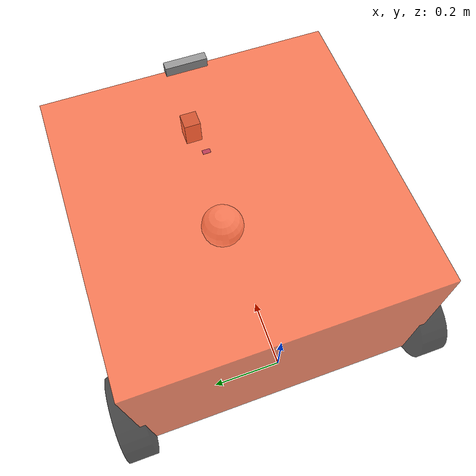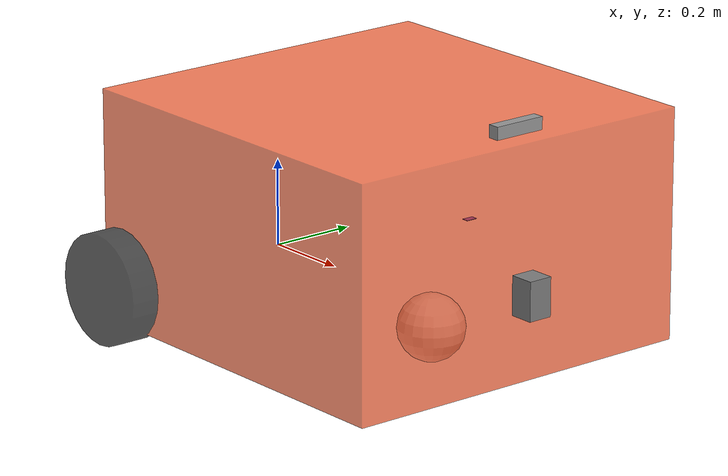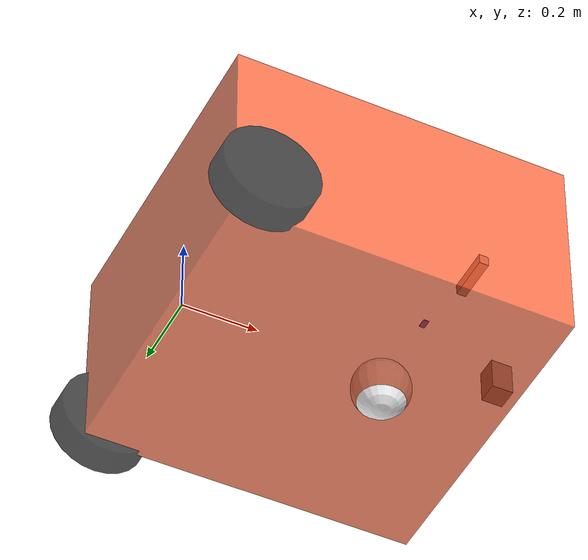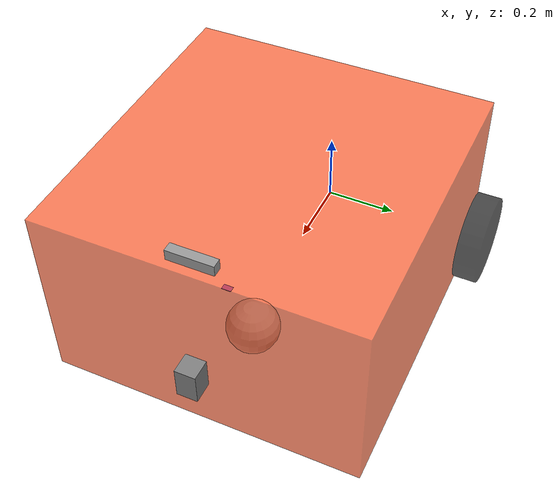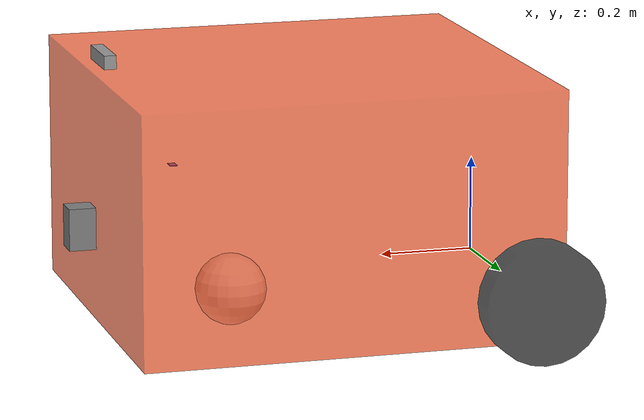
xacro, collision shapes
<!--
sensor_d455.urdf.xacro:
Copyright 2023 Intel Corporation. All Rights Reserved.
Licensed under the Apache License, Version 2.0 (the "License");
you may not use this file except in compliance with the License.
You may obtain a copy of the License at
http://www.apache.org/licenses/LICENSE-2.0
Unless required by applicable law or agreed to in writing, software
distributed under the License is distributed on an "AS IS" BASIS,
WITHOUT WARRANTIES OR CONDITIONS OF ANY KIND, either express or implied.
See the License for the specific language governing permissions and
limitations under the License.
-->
<?xml version="1.0"?>
<robot xmlns:xacro="http://www.ros.org/wiki/xacro" name="sweeper">

  <xacro:include filename="$(find sweepy_bringup)/urdf/robot_core.xacro"/>
  <xacro:include filename="$(find sweepy_bringup)/urdf/gazebo_control.xacro"/>
  <xacro:include filename="$(find sweepy_bringup)/urdf/sensor_sick.xacro"/>
  <xacro:include filename="$(find sweepy_bringup)/urdf/sensor_imu.xacro"/>
  <xacro:include filename="$(find sweepy_bringup)/urdf/sensor_d455.urdf.xacro"/>
  <xacro:include filename="$(find sweepy_bringup)/urdf/sensor_d455.gazebo.xacro"/>
  <xacro:include filename="$(find sweepy_bringup)/urdf/gazebo_sensors.xacro"/>

  <!-- Mount the D455 on base_link -->
  <xacro:sensor_d455 parent="base_link" name="d455" use_nominal_extrinsics="true">
    <origin xyz="0.8 0 0.45" rpy="0 0 0"/>
  </xacro:sensor_d455>

  <!-- Add the Gazebo simulation plugin -->
  <xacro:gazebo_d455
    camera_name="d455_"
    reference_link="d455_link"
    topics_ns="d455"
    depth_optical_frame="d455_depth_optical_frame"
    color_optical_frame="d455_color_optical_frame"
    infrared1_optical_frame="d455_infra1_optical_frame"
    infrared2_optical_frame="d455_infra2_optical_frame"
    publish_pointcloud="true"
  />

</robot>

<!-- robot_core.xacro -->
<robot name="sweeper" xmlns:xacro="http://ros.org/wiki/xacro">

  <xacro:include filename="intertial_macros.xacro"/>

  <!-- Define robot constants -->
  <xacro:property name="chassis_width" value="0.8636"/>
  <xacro:property name="chassis_length" value="0.889"/>
  <xacro:property name="chassis_height" value="0.527"/>
  <xacro:property name="chassis_mass" value="5"/>

  <xacro:property name="wheel_radius" value="0.127"/>
  <xacro:property name="wheel_thickness" value="0.0823"/>
  <xacro:property name="wheel_offset_y" value=".457"/>
  <xacro:property name="wheel_offset_z" value="0.0"/> <!--not used-->
  <xacro:property name="wheel_offset_x" value="0.0"/> <!--not used-->
  <xacro:property name="wheel_mass" value=".5"/>

  <xacro:property name="caster_wheel_mass" value=".2"/>
  <xacro:property name="caster_wheel_radius" value="0.0762"/>
  <xacro:property name="caster_wheel_offset_z" value="0.0445"/> <!-- (1.75") lowest point of chassis to center of caster wheel-->
  <xacro:property name="caster_wheel_offset_x" value=".597"/>

  <!-- chasis bottom point is the back bottom metal frame near the motors -->
  <!-- mass inaccurate, only matters for simulation -->

  <!-- colors for RViz visualization-->
  <material name="white">
    <color rgba="1 1 1 1" />
  </material>
  <material name="orange">
    <color rgba="1 .3 .1 0.7" />
  </material>
  <material name="blue">
    <color rgba=".2 .2 1 1" />
  </material>
  <material name="black">
    <color rgba="0 0 0 0.7" />
  </material>
  <material name="red">
    <color rgba="1 0 0 1" />
  </material>

  <!-- base link-->
  <link name="base_link"/>

  <link name="base_footprint"/>

  <!-- base_footprint link-->
  <joint name="base_footprint_joint" type="fixed">
    <parent link="base_link"/>
    <child link="base_footprint"/>
    <origin xyz="0 0 0" rpy="0 0 0"/>
  </joint>

  <!-- chassis link -->
  <joint name="chassis_joint" type="fixed">
    <parent link="base_link"/>
    <child link="chassis"/>
    <origin xyz="-.0635 0 -.0953"/>
  </joint>

  <link name="chassis">
    <visual>
      <origin xyz="${chassis_length/2} 0 ${chassis_height/2}"/>
      <geometry>
        <box size="${chassis_length} ${chassis_width} ${chassis_height}"/>
      </geometry>
      <material name="orange"/>
    </visual>
    <collision>
      <origin xyz="${chassis_length/2} 0 ${chassis_height/2}"/>
      <geometry>
        <box size="${chassis_length} ${chassis_width} ${chassis_height}"/>
      </geometry>
    </collision>
    <xacro:inertial_box mass="${chassis_mass}" x="${chassis_length}" y="${chassis_width}" z="${chassis_height}">
      <origin xyz="${chassis_length/2} 0 ${chassis_height/2}" rpy="0 0 0"/>
    </xacro:inertial_box>
  </link>

  <gazebo reference="chassis">
    <material>Gazebo/Orange</material>
  </gazebo>

  <!-- LEFT WHEEL LINK -->
  <joint name="left_wheel_joint" type="continuous"> <!-- change back to continuous-->
      <parent link="base_link"/>
      <child link="left_wheel"/>
      <origin xyz="0 ${wheel_offset_y} 0" rpy="-${pi/2} 0 0" />
      <axis xyz="0 0 1"/>
  </joint>

  <link name="left_wheel">
      <visual>
          <geometry>
              <cylinder radius="${wheel_radius}" length="${wheel_thickness}"/>
          </geometry>
          <material name="black"/>
      </visual>
      <collision>
          <geometry>
              <cylinder radius="${wheel_radius}" length="${wheel_thickness}"/>
          </geometry>
      </collision>
      <xacro:inertial_cylinder mass="${wheel_mass}" length="${wheel_thickness}" radius="${wheel_radius}">
          <origin xyz="0 0 0" rpy="0 0 0"/>
      </xacro:inertial_cylinder>
  </link>

  <gazebo reference="left_wheel">
      <material>Gazebo/Black</material>
  </gazebo>

  <!-- RIGHT WHEEL LINK -->
  <joint name="right_wheel_joint" type="continuous"> <!-- change back to continuous-->
      <parent link="base_link"/>
      <child link="right_wheel"/>
      <origin xyz="0 ${-wheel_offset_y} 0" rpy="${pi/2} 0 0" />
      <axis xyz="0 0 -1"/>
  </joint>

  <link name="right_wheel">
      <visual>
          <geometry>
              <cylinder radius="${wheel_radius}" length="${wheel_thickness}"/>
          </geometry>
          <material name="black"/>
      </visual>
      <collision>
          <geometry>
              <cylinder radius="${wheel_radius}" length="${wheel_thickness}"/>
          </geometry>
      </collision>
      <xacro:inertial_cylinder mass="${wheel_mass}" length="${wheel_thickness}" radius="${wheel_radius}">
          <origin xyz="0 0 0" rpy="0 0 0"/>
      </xacro:inertial_cylinder>
  </link>

  <gazebo reference="right_wheel">
      <material>Gazebo/Black</material>
  </gazebo>

  <!-- CASTER WHEEL LINK -->
  <joint name="caster_wheel_joint" type="fixed">
      <parent link="chassis"/>
      <child link="caster_wheel"/>
      <origin xyz="${caster_wheel_offset_x} 0 ${caster_wheel_offset_z}"/>
  </joint>

  <link name="caster_wheel">
      <visual>
          <geometry>
              <sphere radius="${caster_wheel_radius}"/>
          </geometry>
          <material name="white"/>
      </visual>
      <collision>
          <geometry>
              <sphere radius="${caster_wheel_radius}"/>
          </geometry>
      </collision>
      <xacro:inertial_sphere mass="${caster_wheel_mass}" radius="${caster_wheel_radius}">
          <origin xyz="0 0 0" rpy="0 0 0"/>
      </xacro:inertial_sphere>
  </link>

  <gazebo reference="caster_wheel">
      <material>Gazebo/White</material>
      <mu1 value="0.001"/>
      <mu2 value="0.001"/>
  </gazebo>

</robot>

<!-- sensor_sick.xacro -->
<robot name="sweeper" xmlns:xacro="http://ros.org/wiki/xacro">

    <material name="grey">
        <color rgba="0.5 0.5 0.5 1" />
    </material>

    <link name="sick_link">
        <visual>
            <origin xyz="0 0 0" rpy="0 0 0"/>
            <geometry>
                <mesh filename="file://$(find sweepy_bringup)/meshes/sick781.stl" />
            </geometry>
            <material name="grey"/>
        </visual>

        <collision>
            <origin xyz="-0.00 0 -0.02" rpy="0 0 0"/>
            <geometry>
                <box size="0.057 0.057 0.089"/>
            </geometry>
        </collision>

        <inertial>
            <origin xyz="0 0 0" rpy="0 0 0"/>
            <mass value="0.035"/>
            <inertia ixx="0.001"  ixy="0"  ixz="0" iyy="0.001" iyz="0" izz="0.001" />
        </inertial>
    </link>

    <joint name="sick_joint" type="fixed">
        <parent link="base_link"/>
        <child link="sick_link"/>
        <origin xyz=".858 0 .127" rpy="0 0 0"/>
    </joint>

    <gazebo reference="sick_link">
        <material>Gazebo/Grey</material>
    </gazebo>
</robot>

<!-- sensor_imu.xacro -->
<robot name="sucky" xmlns:xacro="http://ros.org/wiki/xacro">
    <material name="blue">
        <color rgba="0.2 0.2 1 1" />
    </material>

    <link name="imu_link">
        <visual>
            <origin xyz="0 0 0" rpy="0 0 0"/>
            <geometry>
                <box size="0.0155 0.0259 0.001"/>
            </geometry>
            <material name="blue"/>
        </visual>

        <collision>
            <origin xyz="-0 0 0" rpy="0 0 0"/>
            <geometry>
                <box size="0.0155 0.0259 0.001"/>
            </geometry>
        </collision>

        <inertial>
            <origin xyz="0 0 0" rpy="0 0 0"/>
            <mass value="0.005"/>
            <inertia ixx="0.001"  ixy="0"  ixz="0" iyy="0.001" iyz="0" izz="0.001" />
        </inertial>
    </link>

    <joint name="imu_joint" type="fixed">
        <parent link="base_link"/>
        <child link="imu_link"/>
        <origin xyz=".658 0 .227" rpy="0 0 0"/>
    </joint>

    <gazebo reference="imu_link">
        <material>Gazebo/Blue</material>
    </gazebo>
</robot>

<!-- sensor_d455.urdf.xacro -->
<!--
This is the URDF model for the Intel RealSense 430 camera, in its
aluminum peripherial evaluation case.
-->

<robot name="sensor_d455" xmlns:xacro="http://ros.org/wiki/xacro">
  <!-- Includes -->
  <xacro:include filename="$(find sweepy_bringup)/urdf/sensor_d455_materials.urdf.xacro" />
  <xacro:include filename="$(find sweepy_bringup)/urdf/sensor_d455_usb_plug.urdf.xacro" />

  <xacro:macro name="sensor_d455" params="parent *origin name:=camera use_nominal_extrinsics:=false">
    <xacro:arg name="add_plug" default="false" />
    <xacro:property name="M_PI" value="3.1415926535897931" />

    <!-- The following values are approximate, and the camera node
     publishing TF values with actual calibrated camera extrinsic values -->
    <xacro:property name="d455_cam_depth_to_infra1_offset" value="0.0"/>
    <xacro:property name="d455_cam_depth_to_infra2_offset" value="-0.095"/>
    <xacro:property name="d455_cam_depth_to_color_offset" value="-0.059"/>

    <!-- The following values model the aluminum peripherial case for the
  	d455 camera, with the camera joint represented by the actual
  	peripherial camera tripod mount -->
    <xacro:property name="d455_cam_width" value="0.124"/>
    <xacro:property name="d455_cam_height" value="0.029"/>
    <xacro:property name="d455_cam_depth" value="0.026"/>
    <xacro:property name="d455_cam_mount_from_center_offset" value="0.0158"/>
    <!-- glass cover is 0.1 mm inwards from front aluminium plate -->
    <xacro:property name="d455_glass_to_front" value="0.1e-3"/>
    <!-- see datasheet Revision 009, Fig. 4-4 page 68 -->
    <xacro:property name="d455_zero_depth_to_glass" value="4.55e-3"/>
    <!-- convenience precomputation to avoid clutter-->
    <xacro:property name="d455_mesh_x_offset" value="${d455_cam_mount_from_center_offset-d455_glass_to_front-d455_zero_depth_to_glass}"/>

    <!-- The following offset is relative to the physical d455 camera peripherial
  	camera tripod mount -->
    <xacro:property name="d455_cam_depth_px" value="${d455_cam_mount_from_center_offset}"/>
    <xacro:property name="d455_cam_depth_py" value="0.0475"/>
    <xacro:property name="d455_cam_depth_pz" value="${d455_cam_height/2}"/>

    <!-- camera body, with origin at bottom screw mount -->
    <joint name="${name}_joint" type="fixed">
      <xacro:insert_block name="origin" />
      <parent link="${parent}"/>
      <child link="${name}_bottom_screw_frame" />
    </joint>
    <link name="${name}_bottom_screw_frame"/>

    <joint name="${name}_link_joint" type="fixed">
      <origin xyz="${d455_mesh_x_offset} ${d455_cam_depth_py} ${d455_cam_depth_pz}" rpy="0 0 0"/>
      <parent link="${name}_bottom_screw_frame"/>
      <child link="${name}_link" />
    </joint>

    <link name="${name}_link">
      <visual>
        <!-- the mesh origin is at front plate in between the two infrared camera axes -->
        <origin xyz="${d455_zero_depth_to_glass + d455_glass_to_front} ${-d455_cam_depth_py} 0" rpy="${M_PI/2} 0 ${M_PI/2}"/>
        <geometry>
	        <mesh filename="file://$(find sweepy_bringup)/meshes/d455.stl" scale="0.001 0.001 0.001" />
        </geometry>
        <material name="aluminum"/>
      </visual>
      <collision>
        <origin xyz="${d455_zero_depth_to_glass-d455_cam_depth/2} ${-d455_cam_depth_py} 0" rpy="0 0 0"/>
        <geometry>
          <box size="${d455_cam_depth} ${d455_cam_width} ${d455_cam_height}"/>
        </geometry>
      </collision>
      <inertial>
        <!-- The following are not reliable values, and should not be used for modeling -->
        <mass value="0.072" />
        <origin xyz="0 0 0" />
        <inertia ixx="0.003881243" ixy="0.0" ixz="0.0" iyy="0.000498940" iyz="0.0" izz="0.003879257" />
      </inertial>
    </link>

    <gazebo reference="${name}_link">
        <material>Gazebo/Grey</material>
    </gazebo>

    <!-- Use the nominal extrinsics between camera frames if the calibrated extrinsics aren't being published. e.g. running the device in simulation  -->
    <xacro:if value="${use_nominal_extrinsics}">
      <!-- camera depth joints and links -->
      <joint name="${name}_depth_joint" type="fixed">
        <origin xyz="0 0 0" rpy="0 0 0"/>
        <parent link="${name}_link"/>
        <child link="${name}_depth_frame" />
      </joint>
      <link name="${name}_depth_frame"/>

      <joint name="${name}_depth_optical_joint" type="fixed">
        <origin xyz="0 0 0" rpy="${-M_PI/2} 0 ${-M_PI/2}" />
        <parent link="${name}_depth_frame" />
        <child link="${name}_depth_optical_frame" />
      </joint>
      <link name="${name}_depth_optical_frame"/>

      <!-- camera left IR joints and links -->
      <joint name="${name}_infra1_joint" type="fixed">
        <origin xyz="0 ${d455_cam_depth_to_infra1_offset} 0" rpy="0 0 0" />
        <parent link="${name}_link" />
        <child link="${name}_infra1_frame" />
      </joint>
      <link name="${name}_infra1_frame"/>

      <joint name="${name}_infra1_optical_joint" type="fixed">
        <origin xyz="0 0 0" rpy="${-M_PI/2} 0 ${-M_PI/2}" />
        <parent link="${name}_infra1_frame" />
        <child link="${name}_infra1_optical_frame" />
      </joint>
      <link name="${name}_infra1_optical_frame"/>

      <!-- camera right IR joints and links -->
      <joint name="${name}_infra2_joint" type="fixed">
        <origin xyz="0 ${d455_cam_depth_to_infra2_offset} 0" rpy="0 0 0" />
        <parent link="${name}_link" />
        <child link="${name}_infra2_frame" />
      </joint>
      <link name="${name}_infra2_frame"/>

      <joint name="${name}_infra2_optical_joint" type="fixed">
        <origin xyz="0 0 0" rpy="${-M_PI/2} 0 ${-M_PI/2}" />
        <parent link="${name}_infra2_frame" />
        <child link="${name}_infra2_optical_frame" />
      </joint>
      <link name="${name}_infra2_optical_frame"/>

      <!-- camera color joints and links -->
      <joint name="${name}_color_joint" type="fixed">
        <origin xyz="0 ${d455_cam_depth_to_color_offset} 0" rpy="0 0 0" />
        <parent link="${name}_link" />
        <child link="${name}_color_frame" />
      </joint>
      <link name="${name}_color_frame"/>

      <joint name="${name}_color_optical_joint" type="fixed">
        <origin xyz="0 0 0" rpy="${-M_PI/2} 0 ${-M_PI/2}" />
        <parent link="${name}_color_frame" />
        <child link="${name}_color_optical_frame" />
      </joint>
      <link name="${name}_color_optical_frame"/>

      <!-- IMU -->
      <!-- see datasheet Revision 009, page 114 -->
      <xacro:property name="d455_imu_px" value="-0.01602"/>
      <xacro:property name="d455_imu_py" value="-0.03022"/>
      <xacro:property name="d455_imu_pz" value="+0.0074"/>

      <link name="${name}_accel_frame" />
      <link name="${name}_accel_optical_frame" />
      <link name="${name}_gyro_frame" />
      <link name="${name}_gyro_optical_frame" />
      <link name="${name}_imu_optical_frame" />

      <joint name="${name}_accel_joint" type="fixed">
        <origin xyz = "${d455_imu_px} ${d455_imu_py} ${d455_imu_pz}" rpy = "0 0 0" />
        <parent link="${name}_link" />
        <child link="${name}_accel_frame" />
      </joint>

      <joint name="${name}_accel_optical_joint" type="fixed">
        <origin xyz = "0 0 0" rpy = "${-M_PI/2} 0 ${-M_PI/2}" />
        <parent link="${name}_accel_frame" />
        <child link="${name}_accel_optical_frame" />
      </joint>

      <joint name="${name}_gyro_joint" type="fixed">
        <origin xyz = "${d455_imu_px} ${d455_imu_py} ${d455_imu_pz}" rpy = "0 0 0" />
        <parent link="${name}_link" />
        <child link="${name}_gyro_frame" />
      </joint>

      <joint name="${name}_gyro_optical_joint" type="fixed">
        <origin xyz = "0 0 0" rpy = "${-M_PI/2} 0 ${-M_PI/2}" />
        <parent link="${name}_gyro_frame" />
        <child link="${name}_gyro_optical_frame" />
      </joint>

      <joint name="${name}_imu_optical_joint" type="fixed">
        <origin xyz = "0 0 0" rpy = "0 0 0" />
        <parent link="${name}_gyro_optical_frame" />
        <child link="${name}_imu_optical_frame" />
      </joint>
    </xacro:if>

    <xacro:if value="$(arg add_plug)">
      <xacro:usb_plug parent="${name}_link" name="${name}_usb_plug">
        <origin xyz="${-0.00406-d455_cam_depth_px} ${-0.03701-d455_cam_depth_py} ${-d455_cam_depth_pz}" rpy="${M_PI/2} 0 0"/>
      </xacro:usb_plug>
    </xacro:if>
  </xacro:macro>
</robot>
